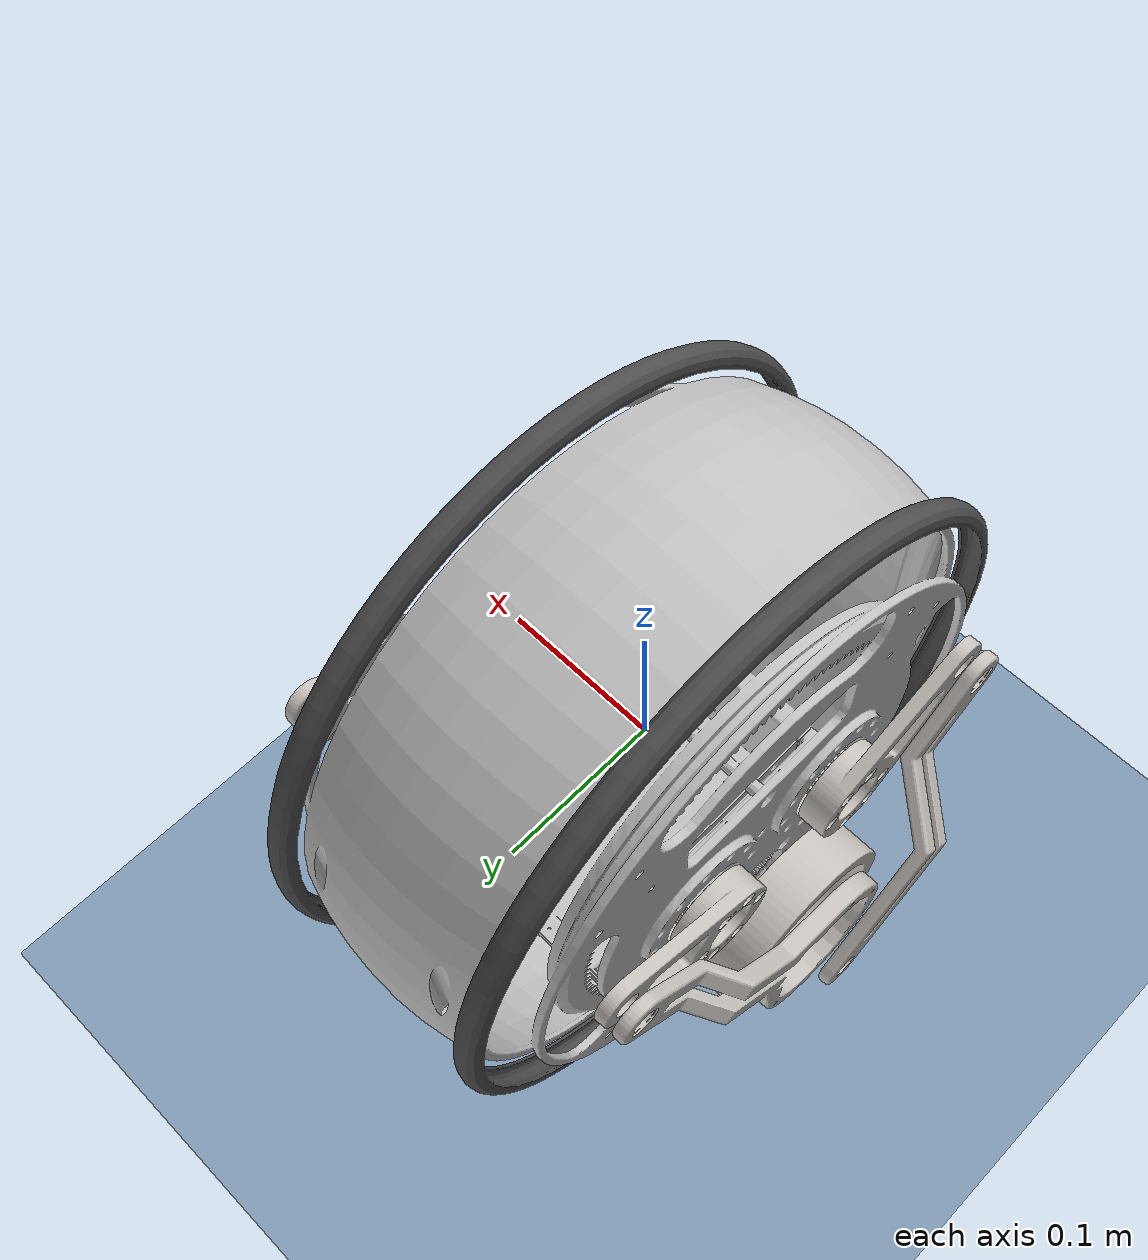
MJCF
<mujoco model="myrobot">
    <compiler angle="radian" meshdir="/home/cherish/yuquan-note/mujoco-model/meshes/" />
    <size njmax="500" nconmax="100" />
    <option gravity='0 0 -9.806' iterations='50' solver='Newton' timestep='0.002'/>
    <default>
        <geom contype="1" conaffinity="1" friction="0.6 0.3 0.3" rgba="0.5 0.6 0.7 1" margin="0.001" group="0"/>

        <light castshadow="false" diffuse="1 1 1"/>
        <motor ctrlrange="-33.5 33.5" ctrllimited="true"/>
        <joint damping="0.01" armature="0.01"/>

    </default>

    <asset>
        <mesh name="base_link" file="base_link.STL" />
        <mesh name="leg1_Link" file="leg1_Link.STL" />
        <mesh name="shank1_Link" file="shank1_Link.STL" />
        <mesh name="wheel1_Link" file="wheel1_Link.STL" />
        <mesh name="leg2_Link" file="leg2_Link.STL" />
        <mesh name="shank2_Link" file="shank2_Link.STL" />
        <mesh name="leg3_Link" file="leg3_Link.STL" />
        <mesh name="shank3_Link" file="shank3_Link.STL" />
        <mesh name="wheel2_Link" file="wheel2_Link.STL" />
        <mesh name="leg4_Link" file="leg4_Link.STL" />
        <mesh name="shank4_Link" file="shank4_Link.STL" />
        <mesh name="wheel3_Link" file="wheel3_Link.STL" />
        <mesh name="wheel4_Link" file="wheel4_Link.STL" />
        <material name="floorplane" reflectance="0.5" texrepeat="1 1" texture="texplane" texuniform="true"/>
        <texture builtin="checker" height="512" name="texplane" rgb1=".2 .3 .4" rgb2=".1 0.15 0.2" type="2d" width="512"/>

    </asset>
    <worldbody>

        <!-- 灯光 -->
        <light directional="true" ambient="0.2 0.2 0.2" diffuse="0.8 0.8 0.8" specular="0.3 0.3 0.3" castshadow="false" pos="0 0 4" dir="0 0 -1" name="light0"></light>

        <!-- 添加地板，这样我们就不会凝视深渊 -->

        <geom name="floor0" pos="0. 0. -0.3" size="3 3 .125" type="plane" condim="3" material="floorplane"></geom>

        <body name="base_link" pos="0 0 0">
            <inertial pos="-4.46808e-07 -3.0378e-06 -0.0203696" quat="0.707086 0.707127 0.000158068 0.000155919" mass="7.22272" diaginertia="0.0954744 0.0562081 0.0439546" />
            <joint name="floating_base" type="free" />
            <geom type="mesh" contype="0" conaffinity="0" group="1" rgba="0.752941 0.752941 0.752941 1" mesh="base_link" />
            <geom type="mesh" rgba="0.752941 0.752941 0.752941 1" mesh="base_link" />
            <body name="leg1_Link" pos="-0.1015 0.05 0">
                <inertial pos="-0.00179523 0.0201687 0.0131344" quat="0.476366 0.878697 0.0148221 0.0273407" mass="0.10778" diaginertia="0.000161092 0.000139586 2.60214e-05" />
                <joint name="leg1_jonit" pos="0 0 0" axis="-1 0 0" />
                <geom type="mesh" contype="0" conaffinity="0" group="1" rgba="0.776471 0.756863 0.737255 1" mesh="leg1_Link" />
                <geom type="mesh" rgba="0.776471 0.756863 0.737255 1" mesh="leg1_Link" />
                <body name="shank1_Link" pos="-0.0161 0.075418 0.049114">
                    <inertial pos="-0.014573 -0.0843871 -0.0868742" quat="0.925825 -0.375637 0.0387115 -0.0157065" mass="0.17991" diaginertia="0.000896879 0.00081189 9.5825e-05" />
                    <joint name="shank1_joint" pos="0 0 0" axis="1 0 0" />
                    <geom type="mesh" contype="0" conaffinity="0" group="1" rgba="0.776471 0.756863 0.737255 1" mesh="shank1_Link" />
                    <geom type="mesh" rgba="0.776471 0.756863 0.737255 1" mesh="shank1_Link" />
                    <body name="wheel1_Link" pos="0.004 -0.12542 -0.12911">
                        <inertial pos="0.00354162 0 0" quat="0.996435 0.0843617 0 0" mass="0.410353" diaginertia="0.00104917 0.000555031 0.000555006" />
                        <joint name="wheel1_joint" pos="0 0 0" axis="1 0 0" />
                        <geom type="mesh" contype="0" conaffinity="0" group="1" rgba="0.776471 0.756863 0.737255 1" mesh="wheel1_Link" />
                        <geom type="mesh" rgba="0.776471 0.756863 0.737255 1" mesh="wheel1_Link" />
                    </body>
                </body>
            </body>
            <body name="leg2_Link" pos="-0.1015 -0.05 0">
                <inertial pos="-0.00179523 -0.0201687 0.0131344" quat="0.878697 0.476367 -0.0273407 -0.0148222" mass="0.10778" diaginertia="0.000161092 0.000139586 2.60213e-05" />
                <joint name="leg2_joint" pos="0 0 0" axis="-1 0 0" />
                <geom type="mesh" contype="0" conaffinity="0" group="1" rgba="0.776471 0.756863 0.737255 1" mesh="leg2_Link" />
                <geom type="mesh" rgba="0.776471 0.756863 0.737255 1" mesh="leg2_Link" />
                <body name="shank2_Link" pos="-0.0161 -0.0754176 0.049114">
                    <inertial pos="-0.021352 0.0618446 -0.0636673" quat="0.919235 0.372963 0.116866 0.0474165" mass="0.11097" diaginertia="0.000399813 0.000395694 1.62694e-05" />
                    <joint name="shank2_joint" pos="0 0 0" axis="-1 0 0" />
                    <geom type="mesh" contype="0" conaffinity="0" group="1" rgba="0.776471 0.756863 0.737255 1" mesh="shank2_Link" />
                    <geom type="mesh" rgba="0.776471 0.756863 0.737255 1" mesh="shank2_Link" />
                </body>
            </body>
            <body name="leg3_Link" pos="0.1015 -0.05 0">
                <inertial pos="0.00179523 -0.0201687 0.0131344" quat="0.878697 0.476366 0.0273407 0.0148221" mass="0.10778" diaginertia="0.000161092 0.000139586 2.60214e-05" />
                <joint name="leg3_joint" pos="0 0 0" axis="1 0 0" />
                <geom type="mesh" contype="0" conaffinity="0" group="1" rgba="0.776471 0.756863 0.737255 1" mesh="leg3_Link" />
                <geom type="mesh" rgba="0.776471 0.756863 0.737255 1" mesh="leg3_Link" />
                <body name="shank3_Link" pos="0.0161 -0.075418 0.049114">
                    <inertial pos="0.014573 0.0843871 -0.0868742" quat="0.925825 0.375637 -0.0387115 -0.0157065" mass="0.17991" diaginertia="0.000896879 0.00081189 9.5825e-05" />
                    <joint name="shank3_joint" pos="0 0 0" axis="-1 0 0" />
                    <geom type="mesh" contype="0" conaffinity="0" group="1" rgba="0.776471 0.756863 0.737255 1" mesh="shank3_Link" />
                    <geom type="mesh" rgba="0.776471 0.756863 0.737255 1" mesh="shank3_Link" />
                    <body name="wheel2_Link" pos="-0.004 0.12542 -0.12911">
                        <inertial pos="-0.00354162 0 0" quat="0.931766 -0.363059 0 0" mass="0.410353" diaginertia="0.00104917 0.000555031 0.000555006" />
                        <joint name="wheel2_joint" pos="0 0 0" axis="-1 0 0" />
                        <geom type="mesh" contype="0" conaffinity="0" group="1" rgba="0.776471 0.756863 0.737255 1" mesh="wheel2_Link" />
                        <geom type="mesh" rgba="0.776471 0.756863 0.737255 1" mesh="wheel2_Link" />
                    </body>
                </body>
            </body>
            <body name="leg4_Link" pos="0.1015 0.05 0" quat="-3.67321e-06 1 0 0">
                <inertial pos="0.00179523 -0.0201687 -0.0131344" quat="0.476367 0.878697 0.0148222 0.0273407" mass="0.10778" diaginertia="0.000161092 0.000139586 2.60213e-05" />
                <joint name="leg4_joint" pos="0 0 0" axis="1 0 0" />
                <geom type="mesh" contype="0" conaffinity="0" group="1" rgba="0.776471 0.756863 0.737255 1" mesh="leg4_Link" />
                <geom type="mesh" rgba="0.776471 0.756863 0.737255 1" mesh="leg4_Link" />
                <body name="shank4_Link" pos="0.0161 -0.075418 -0.049114" quat="-3.67321e-06 1 0 0">
                    <inertial pos="0.021352 -0.0618446 -0.0636673" quat="0.919235 -0.372963 -0.116866 0.0474165" mass="0.11097" diaginertia="0.000399813 0.000395694 1.62694e-05" />
                    <joint name="shank4_joint" pos="0 0 0" axis="1 0 0" />
                    <geom type="mesh" contype="0" conaffinity="0" group="1" rgba="0.776471 0.756863 0.737255 1" mesh="shank4_Link" />
                    <geom type="mesh" rgba="0.776471 0.756863 0.737255 1" mesh="shank4_Link" />
                </body>
            </body>
            <body name="wheel3_Link" pos="-0.068 0 0">
                <inertial pos="0 0 0" mass="0.0632598" diaginertia="0.0024206 0.00121214 0.00121214" />
                <joint name="wheel3_joint" pos="0 0 0" axis="0.978031 -0.14849 0.14631" />
                <geom type="mesh" contype="0" conaffinity="0" group="1" rgba="0.298039 0.298039 0.298039 1" mesh="wheel3_Link" />
                <geom type="mesh" rgba="0.298039 0.298039 0.298039 1" mesh="wheel3_Link" />
            </body>
            <body name="wheel4_Link" pos="0.068 0 0" quat="-3.67321e-06 1 0 0">
                <inertial pos="0 0 0" mass="0.0632598" diaginertia="0.0024206 0.00121214 0.00121214" />
                <joint name="wheel4_joint" pos="0 0 0" axis="0.978031 0.14849 -0.14631" />
                <geom type="mesh" contype="0" conaffinity="0" group="1" rgba="0.298039 0.298039 0.298039 1" mesh="wheel4_Link" />
                <geom type="mesh" rgba="0.298039 0.298039 0.298039 1" mesh="wheel4_Link" />
            </body>
        </body>
    </worldbody>
    <!-- 虚拟关节 -->
    <equality>
        <connect name="virtue_link1" active="true" body1="shank2_Link" body2="shank1_Link" anchor="17 -17 -17" />
        <connect name="virtue_link2" active="true" body1="shank3_Link" body2="shank4_Link" anchor="-17 17 -17" />
    </equality>

</mujoco>
